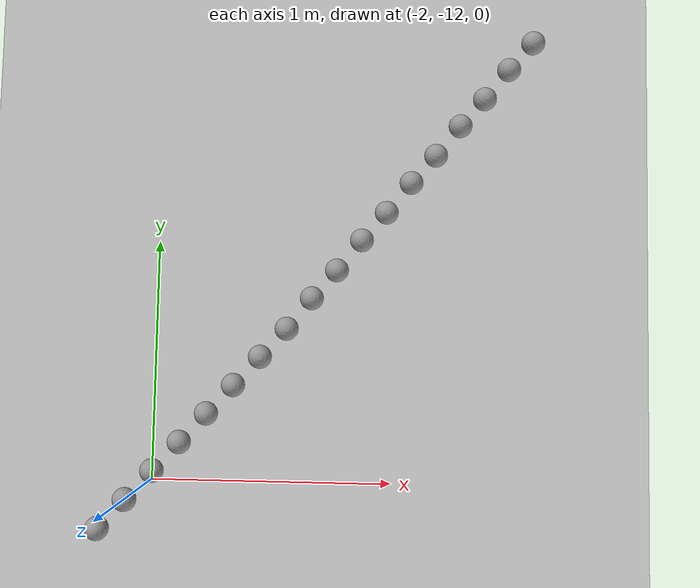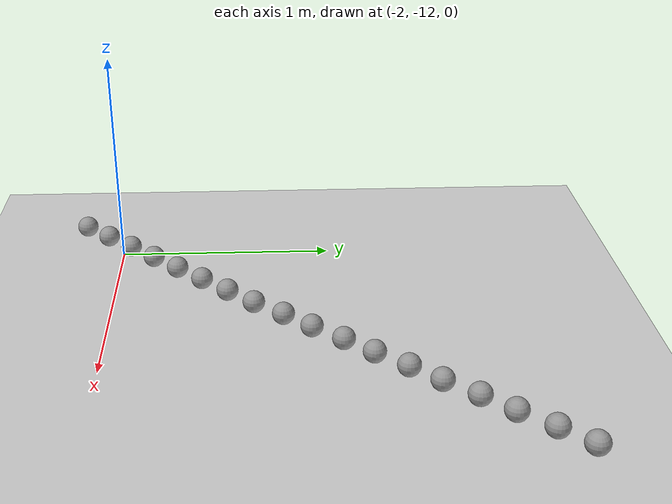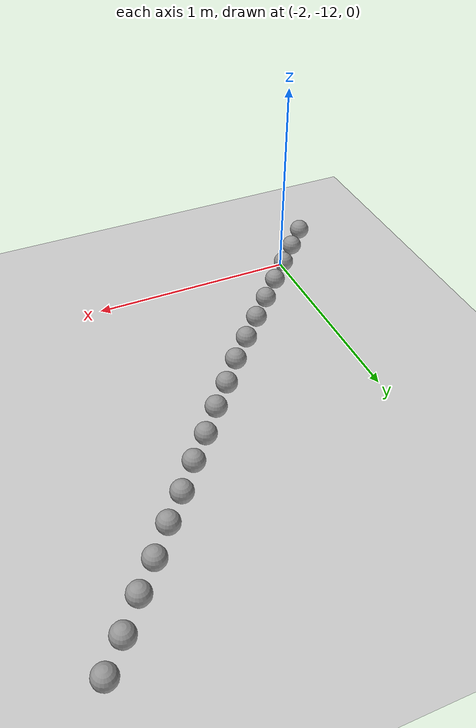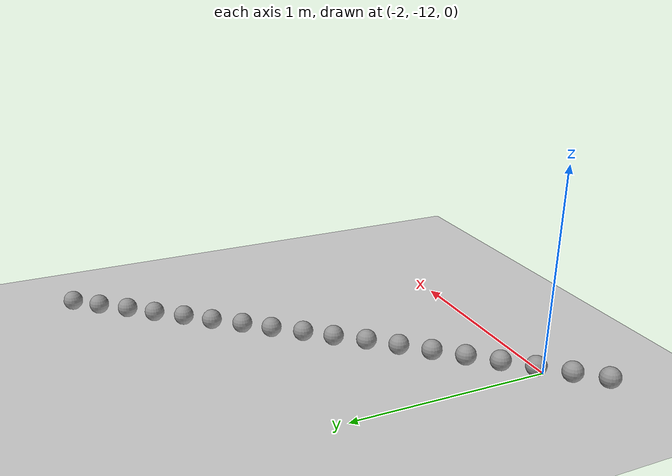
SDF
<sdf version="1.6">
 <world name="default">
  <model name="ground_plane">
   <static>1</static>
   <link name="link">
    <collision name="collision">
     <geometry><plane><normal>0 0 1</normal><size>100 100</size></plane></geometry>
     <surface><friction><ode><mu>100</mu><mu2>50</mu2></ode></friction></surface>
    </collision>
    <visual name="visual">
     <cast_shadows>0</cast_shadows>
     <geometry><plane><normal>0 0 1</normal><size>100 100</size></plane></geometry>
     <material>
      <script><uri>file://media/materials/scripts/gazebo.material</uri><name>Gazebo/Grey</name></script>
     </material>
    </visual>
   </link>
  </model>
  <model name="unit_sphere_0_343">
   <pose>-2.213000 -12.200000 0.050000 0 -0 0</pose>
   <link name="link">
    <inertial>
     <mass>1</mass>
     <inertia><ixx>0.1</ixx><ixy>0</ixy><ixz>0</ixz><iyy>0.1</iyy><iyz>0</iyz><izz>0.1</izz></inertia>
    </inertial>
    <collision name="collision"><geometry><sphere><radius>0.050000</radius></sphere></geometry></collision>
    <visual name="visual">
     <geometry><sphere><radius>0.050000</radius></sphere></geometry>
     <material>
      <script><name>Gazebo/Grey</name><uri>file://media/materials/scripts/gazebo.material</uri></script>
     </material>
    </visual>
   </link>
  </model>
  <model name="unit_sphere_0_344">
   <pose>-2.104000 -12.080000 0.050000 0 -0 0</pose>
   <link name="link">
    <inertial>
     <mass>1</mass>
     <inertia><ixx>0.1</ixx><ixy>0</ixy><ixz>0</ixz><iyy>0.1</iyy><iyz>0</iyz><izz>0.1</izz></inertia>
    </inertial>
    <collision name="collision"><geometry><sphere><radius>0.050000</radius></sphere></geometry></collision>
    <visual name="visual">
     <geometry><sphere><radius>0.050000</radius></sphere></geometry>
     <material>
      <script><name>Gazebo/Grey</name><uri>file://media/materials/scripts/gazebo.material</uri></script>
     </material>
    </visual>
   </link>
  </model>
  <model name="unit_sphere_0_345">
   <pose>-1.995000 -11.960000 0.050000 0 -0 0</pose>
   <link name="link">
    <inertial>
     <mass>1</mass>
     <inertia><ixx>0.1</ixx><ixy>0</ixy><ixz>0</ixz><iyy>0.1</iyy><iyz>0</iyz><izz>0.1</izz></inertia>
    </inertial>
    <collision name="collision"><geometry><sphere><radius>0.050000</radius></sphere></geometry></collision>
    <visual name="visual">
     <geometry><sphere><radius>0.050000</radius></sphere></geometry>
     <material>
      <script><name>Gazebo/Grey</name><uri>file://media/materials/scripts/gazebo.material</uri></script>
     </material>
    </visual>
   </link>
  </model>
  <model name="unit_sphere_0_346">
   <pose>-1.886000 -11.840000 0.050000 0 -0 0</pose>
   <link name="link">
    <inertial>
     <mass>1</mass>
     <inertia><ixx>0.1</ixx><ixy>0</ixy><ixz>0</ixz><iyy>0.1</iyy><iyz>0</iyz><izz>0.1</izz></inertia>
    </inertial>
    <collision name="collision"><geometry><sphere><radius>0.050000</radius></sphere></geometry></collision>
    <visual name="visual">
     <geometry><sphere><radius>0.050000</radius></sphere></geometry>
     <material>
      <script><name>Gazebo/Grey</name><uri>file://media/materials/scripts/gazebo.material</uri></script>
     </material>
    </visual>
   </link>
  </model>
  <model name="unit_sphere_0_347">
   <pose>-1.777000 -11.720000 0.050000 0 -0 0</pose>
   <link name="link">
    <inertial>
     <mass>1</mass>
     <inertia><ixx>0.1</ixx><ixy>0</ixy><ixz>0</ixz><iyy>0.1</iyy><iyz>0</iyz><izz>0.1</izz></inertia>
    </inertial>
    <collision name="collision"><geometry><sphere><radius>0.050000</radius></sphere></geometry></collision>
    <visual name="visual">
     <geometry><sphere><radius>0.050000</radius></sphere></geometry>
     <material>
      <script><name>Gazebo/Grey</name><uri>file://media/materials/scripts/gazebo.material</uri></script>
     </material>
    </visual>
   </link>
  </model>
  <model name="unit_sphere_0_348">
   <pose>-1.668000 -11.600000 0.050000 0 -0 0</pose>
   <link name="link">
    <inertial>
     <mass>1</mass>
     <inertia><ixx>0.1</ixx><ixy>0</ixy><ixz>0</ixz><iyy>0.1</iyy><iyz>0</iyz><izz>0.1</izz></inertia>
    </inertial>
    <collision name="collision"><geometry><sphere><radius>0.050000</radius></sphere></geometry></collision>
    <visual name="visual">
     <geometry><sphere><radius>0.050000</radius></sphere></geometry>
     <material>
      <script><name>Gazebo/Grey</name><uri>file://media/materials/scripts/gazebo.material</uri></script>
     </material>
    </visual>
   </link>
  </model>
  <model name="unit_sphere_0_349">
   <pose>-1.559000 -11.480000 0.050000 0 -0 0</pose>
   <link name="link">
    <inertial>
     <mass>1</mass>
     <inertia><ixx>0.1</ixx><ixy>0</ixy><ixz>0</ixz><iyy>0.1</iyy><iyz>0</iyz><izz>0.1</izz></inertia>
    </inertial>
    <collision name="collision"><geometry><sphere><radius>0.050000</radius></sphere></geometry></collision>
    <visual name="visual">
     <geometry><sphere><radius>0.050000</radius></sphere></geometry>
     <material>
      <script><name>Gazebo/Grey</name><uri>file://media/materials/scripts/gazebo.material</uri></script>
     </material>
    </visual>
   </link>
  </model>
  <model name="unit_sphere_0_350">
   <pose>-1.450000 -11.360000 0.050000 0 -0 0</pose>
   <link name="link">
    <inertial>
     <mass>1</mass>
     <inertia><ixx>0.1</ixx><ixy>0</ixy><ixz>0</ixz><iyy>0.1</iyy><iyz>0</iyz><izz>0.1</izz></inertia>
    </inertial>
    <collision name="collision"><geometry><sphere><radius>0.050000</radius></sphere></geometry></collision>
    <visual name="visual">
     <geometry><sphere><radius>0.050000</radius></sphere></geometry>
     <material>
      <script><name>Gazebo/Grey</name><uri>file://media/materials/scripts/gazebo.material</uri></script>
     </material>
    </visual>
   </link>
  </model>
  <model name="unit_sphere_0_351">
   <pose>-1.347000 -11.230000 0.050000 0 -0 0</pose>
   <link name="link">
    <inertial>
     <mass>1</mass>
     <inertia><ixx>0.1</ixx><ixy>0</ixy><ixz>0</ixz><iyy>0.1</iyy><iyz>0</iyz><izz>0.1</izz></inertia>
    </inertial>
    <collision name="collision"><geometry><sphere><radius>0.050000</radius></sphere></geometry></collision>
    <visual name="visual">
     <geometry><sphere><radius>0.050000</radius></sphere></geometry>
     <material>
      <script><name>Gazebo/Grey</name><uri>file://media/materials/scripts/gazebo.material</uri></script>
     </material>
    </visual>
   </link>
  </model>
  <model name="unit_sphere_0_352">
   <pose>-1.244000 -11.110000 0.050000 0 -0 0</pose>
   <link name="link">
    <inertial>
     <mass>1</mass>
     <inertia><ixx>0.1</ixx><ixy>0</ixy><ixz>0</ixz><iyy>0.1</iyy><iyz>0</iyz><izz>0.1</izz></inertia>
    </inertial>
    <collision name="collision"><geometry><sphere><radius>0.050000</radius></sphere></geometry></collision>
    <visual name="visual">
     <geometry><sphere><radius>0.050000</radius></sphere></geometry>
     <material>
      <script><name>Gazebo/Grey</name><uri>file://media/materials/scripts/gazebo.material</uri></script>
     </material>
    </visual>
   </link>
  </model>
  <model name="unit_sphere_0_353">
   <pose>-1.141000 -10.980000 0.050000 0 -0 0</pose>
   <link name="link">
    <inertial>
     <mass>1</mass>
     <inertia><ixx>0.1</ixx><ixy>0</ixy><ixz>0</ixz><iyy>0.1</iyy><iyz>0</iyz><izz>0.1</izz></inertia>
    </inertial>
    <collision name="collision"><geometry><sphere><radius>0.050000</radius></sphere></geometry></collision>
    <visual name="visual">
     <geometry><sphere><radius>0.050000</radius></sphere></geometry>
     <material>
      <script><name>Gazebo/Grey</name><uri>file://media/materials/scripts/gazebo.material</uri></script>
     </material>
    </visual>
   </link>
  </model>
  <model name="unit_sphere_0_354">
   <pose>-1.038000 -10.860000 0.050000 0 -0 0</pose>
   <link name="link">
    <inertial>
     <mass>1</mass>
     <inertia><ixx>0.1</ixx><ixy>0</ixy><ixz>0</ixz><iyy>0.1</iyy><iyz>0</iyz><izz>0.1</izz></inertia>
    </inertial>
    <collision name="collision"><geometry><sphere><radius>0.050000</radius></sphere></geometry></collision>
    <visual name="visual">
     <geometry><sphere><radius>0.050000</radius></sphere></geometry>
     <material>
      <script><name>Gazebo/Grey</name><uri>file://media/materials/scripts/gazebo.material</uri></script>
     </material>
    </visual>
   </link>
  </model>
  <model name="unit_sphere_0_355">
   <pose>-0.935000 -10.730000 0.050000 0 -0 0</pose>
   <link name="link">
    <inertial>
     <mass>1</mass>
     <inertia><ixx>0.1</ixx><ixy>0</ixy><ixz>0</ixz><iyy>0.1</iyy><iyz>0</iyz><izz>0.1</izz></inertia>
    </inertial>
    <collision name="collision"><geometry><sphere><radius>0.050000</radius></sphere></geometry></collision>
    <visual name="visual">
     <geometry><sphere><radius>0.050000</radius></sphere></geometry>
     <material>
      <script><name>Gazebo/Grey</name><uri>file://media/materials/scripts/gazebo.material</uri></script>
     </material>
    </visual>
   </link>
  </model>
  <model name="unit_sphere_0_356">
   <pose>-0.832000 -10.610000 0.050000 0 -0 0</pose>
   <link name="link">
    <inertial>
     <mass>1</mass>
     <inertia><ixx>0.1</ixx><ixy>0</ixy><ixz>0</ixz><iyy>0.1</iyy><iyz>0</iyz><izz>0.1</izz></inertia>
    </inertial>
    <collision name="collision"><geometry><sphere><radius>0.050000</radius></sphere></geometry></collision>
    <visual name="visual">
     <geometry><sphere><radius>0.050000</radius></sphere></geometry>
     <material>
      <script><name>Gazebo/Grey</name><uri>file://media/materials/scripts/gazebo.material</uri></script>
     </material>
    </visual>
   </link>
  </model>
  <model name="unit_sphere_0_357">
   <pose>-0.729000 -10.480000 0.050000 0 -0 0</pose>
   <link name="link">
    <inertial>
     <mass>1</mass>
     <inertia><ixx>0.1</ixx><ixy>0</ixy><ixz>0</ixz><iyy>0.1</iyy><iyz>0</iyz><izz>0.1</izz></inertia>
    </inertial>
    <collision name="collision"><geometry><sphere><radius>0.050000</radius></sphere></geometry></collision>
    <visual name="visual">
     <geometry><sphere><radius>0.050000</radius></sphere></geometry>
     <material>
      <script><name>Gazebo/Grey</name><uri>file://media/materials/scripts/gazebo.material</uri></script>
     </material>
    </visual>
   </link>
  </model>
  <model name="unit_sphere_0_358">
   <pose>-0.626000 -10.360000 0.050000 0 -0 0</pose>
   <link name="link">
    <inertial>
     <mass>1</mass>
     <inertia><ixx>0.1</ixx><ixy>0</ixy><ixz>0</ixz><iyy>0.1</iyy><iyz>0</iyz><izz>0.1</izz></inertia>
    </inertial>
    <collision name="collision"><geometry><sphere><radius>0.050000</radius></sphere></geometry></collision>
    <visual name="visual">
     <geometry><sphere><radius>0.050000</radius></sphere></geometry>
     <material>
      <script><name>Gazebo/Grey</name><uri>file://media/materials/scripts/gazebo.material</uri></script>
     </material>
    </visual>
   </link>
  </model>
  <model name="unit_sphere_0_359">
   <pose>-0.523000 -10.230000 0.050000 0 -0 0</pose>
   <link name="link">
    <inertial>
     <mass>1</mass>
     <inertia><ixx>0.1</ixx><ixy>0</ixy><ixz>0</ixz><iyy>0.1</iyy><iyz>0</iyz><izz>0.1</izz></inertia>
    </inertial>
    <collision name="collision"><geometry><sphere><radius>0.050000</radius></sphere></geometry></collision>
    <visual name="visual">
     <geometry><sphere><radius>0.050000</radius></sphere></geometry>
     <material>
      <script><name>Gazebo/Grey</name><uri>file://media/materials/scripts/gazebo.material</uri></script>
     </material>
    </visual>
   </link>
  </model>
  <model name="unit_sphere_0_360">
   <pose>-0.420000 -10.110000 0.050000 0 -0 0</pose>
   <link name="link">
    <inertial>
     <mass>1</mass>
     <inertia><ixx>0.1</ixx><ixy>0</ixy><ixz>0</ixz><iyy>0.1</iyy><iyz>0</iyz><izz>0.1</izz></inertia>
    </inertial>
    <collision name="collision"><geometry><sphere><radius>0.050000</radius></sphere></geometry></collision>
    <visual name="visual">
     <geometry><sphere><radius>0.050000</radius></sphere></geometry>
     <material>
      <script><name>Gazebo/Grey</name><uri>file://media/materials/scripts/gazebo.material</uri></script>
     </material>
    </visual>
   </link>
  </model>
 </world>
</sdf>
